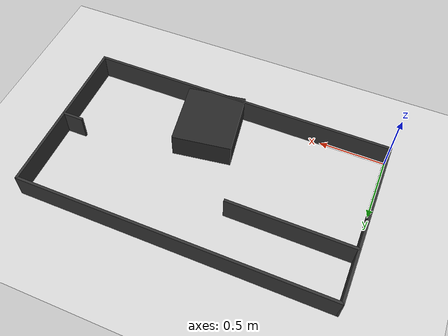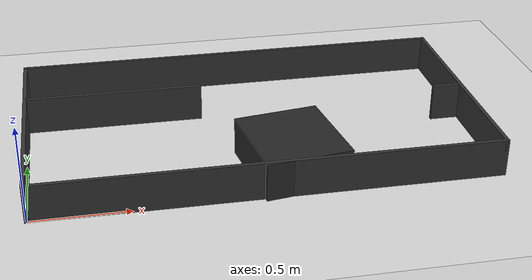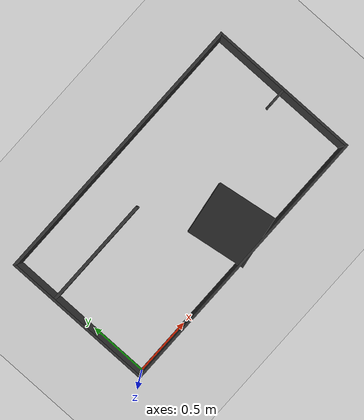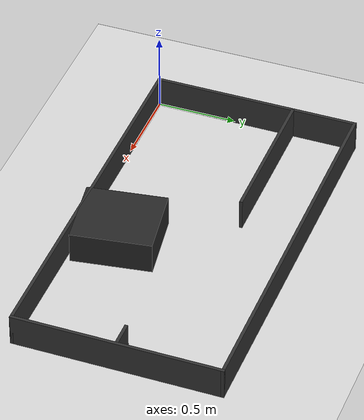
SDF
<?xml version="1.0" ?>
<sdf version="1.8">
  <world name="map5_arena">

    <physics name="1ms" type="ignored">
      <max_step_size>0.001</max_step_size>
      <real_time_factor>1.0</real_time_factor>
    </physics>

    <plugin filename="gz-sim-physics-system"
            name="gz::sim::systems::Physics"/>
    <plugin filename="gz-sim-user-commands-system"
            name="gz::sim::systems::UserCommands"/>
    <plugin filename="gz-sim-scene-broadcaster-system"
            name="gz::sim::systems::SceneBroadcaster"/>
    <plugin filename="gz-sim-sensors-system"
            name="gz::sim::systems::Sensors">
      <render_engine>ogre2</render_engine>
    </plugin>
    <plugin filename="gz-sim-imu-system"
            name="gz::sim::systems::Imu"/>

    <!-- 환경광 및 조명 -->
    <scene>
      <ambient>0.6 0.6 0.6 1.0</ambient>
      <background>0.8 0.85 0.9 1.0</background>
      <shadows>false</shadows>
    </scene>

    <light type="directional" name="sun">
      <cast_shadows>false</cast_shadows>
      <pose>1.18 0.64 5.0 0 0 0</pose>
      <diffuse>0.9 0.9 0.9 1</diffuse>
      <specular>0.2 0.2 0.2 1</specular>
      <direction>0 0 -1</direction>
    </light>

    <!-- 바닥면 (Ground Plane): 2.36m x 1.28m 아레나 바닥 -->
    <model name="ground_plane">
      <static>true</static>
      <pose>1.18 0.64 0 0 0 0</pose>
      <link name="link">
        <collision name="collision">
          <geometry><plane><normal>0 0 1</normal><size>2.36 1.28</size></plane></geometry>
          <surface>
            <friction>
              <ode><mu>1.0</mu><mu2>1.0</mu2></ode>
            </friction>
          </surface>
        </collision>
        <visual name="visual">
          <geometry><plane><normal>0 0 1</normal><size>2.36 1.28</size></plane></geometry>
          <material>
            <ambient>0.85 0.85 0.85 1</ambient>
            <diffuse>0.85 0.85 0.85 1</diffuse>
            <pbr>
              <metal>
                <albedo_map>map5_with_lanes_hi.png</albedo_map>
              </metal>
            </pbr>
          </material>
        </visual>
      </link>
    </model>

    <!--
      벽체 정의: 높이 20cm, 두께 2cm.
      pose의 z는 벽 중심이므로 0.1m.
    -->

    <!-- 1. 외곽 북쪽 벽 (y = 1.28m) -->
    <model name="wall_north">
      <static>true</static>
      <pose>1.18 1.28 0.1 0 0 0</pose>
      <link name="link">
        <collision name="collision">
          <geometry><box><size>2.38 0.02 0.2</size></box></geometry>
        </collision>
        <visual name="visual">
          <geometry><box><size>2.38 0.02 0.2</size></box></geometry>
          <material>
            <ambient>0.15 0.15 0.15 1</ambient>
            <diffuse>0.2 0.2 0.2 1</diffuse>
          </material>
        </visual>
      </link>
    </model>

    <!-- 2. 외곽 남쪽 벽 (y = 0.00m) -->
    <model name="wall_south">
      <static>true</static>
      <pose>1.18 0.00 0.1 0 0 0</pose>
      <link name="link">
        <collision name="collision">
          <geometry><box><size>2.38 0.02 0.2</size></box></geometry>
        </collision>
        <visual name="visual">
          <geometry><box><size>2.38 0.02 0.2</size></box></geometry>
          <material>
            <ambient>0.15 0.15 0.15 1</ambient>
            <diffuse>0.2 0.2 0.2 1</diffuse>
          </material>
        </visual>
      </link>
    </model>

    <!-- 3. 외곽 서쪽 벽 (x = 0.00m) -->
    <model name="wall_west">
      <static>true</static>
      <pose>0.00 0.64 0.1 0 0 0</pose>
      <link name="link">
        <collision name="collision">
          <geometry><box><size>0.02 1.30 0.2</size></box></geometry>
        </collision>
        <visual name="visual">
          <geometry><box><size>0.02 1.30 0.2</size></box></geometry>
          <material>
            <ambient>0.15 0.15 0.15 1</ambient>
            <diffuse>0.2 0.2 0.2 1</diffuse>
          </material>
        </visual>
      </link>
    </model>

    <!-- 4. 외곽 동쪽 벽 (x = 2.36m) -->
    <model name="wall_east">
      <static>true</static>
      <pose>2.36 0.64 0.1 0 0 0</pose>
      <link name="link">
        <collision name="collision">
          <geometry><box><size>0.02 1.30 0.2</size></box></geometry>
        </collision>
        <visual name="visual">
          <geometry><box><size>0.02 1.30 0.2</size></box></geometry>
          <material>
            <ambient>0.15 0.15 0.15 1</ambient>
            <diffuse>0.2 0.2 0.2 1</diffuse>
          </material>
        </visual>
      </link>
    </model>

    <!-- 5. 내부 좌측 수평 차단벽 (x in [0, 0.95], y = 0.88m) -->
    <model name="wall_inner_left">
      <static>true</static>
      <pose>0.475 0.88 0.1 0 0 0</pose>
      <link name="link">
        <collision name="collision">
          <geometry><box><size>0.95 0.02 0.2</size></box></geometry>
        </collision>
        <visual name="visual">
          <geometry><box><size>0.95 0.02 0.2</size></box></geometry>
          <material>
            <ambient>0.15 0.15 0.15 1</ambient>
            <diffuse>0.2 0.2 0.2 1</diffuse>
          </material>
        </visual>
      </link>
    </model>

    <!-- 6. 내부 우측 수평 돌출벽 (x in [2.20, 2.36], y = 0.64m) -->
    <model name="wall_inner_right">
      <static>true</static>
      <pose>2.28 0.64 0.1 0 0 0</pose>
      <link name="link">
        <collision name="collision">
          <geometry><box><size>0.16 0.02 0.2</size></box></geometry>
        </collision>
        <visual name="visual">
          <geometry><box><size>0.16 0.02 0.2</size></box></geometry>
          <material>
            <ambient>0.15 0.15 0.15 1</ambient>
            <diffuse>0.2 0.2 0.2 1</diffuse>
          </material>
        </visual>
      </link>
    </model>

    <!-- 7. 하단 중앙 사다리꼴 장애물 (x in [1.10, 1.55], y in [0.0, 0.55]) -->
    <model name="obstacle_center">
      <static>true</static>
      <pose>1.325 0.25 0.1 0 0 0.15</pose>
      <link name="link">
        <collision name="collision">
          <geometry><box><size>0.45 0.50 0.2</size></box></geometry>
        </collision>
        <visual name="visual">
          <geometry><box><size>0.45 0.50 0.2</size></box></geometry>
          <material>
            <ambient>0.1 0.1 0.1 1</ambient>
            <diffuse>0.15 0.15 0.15 1</diffuse>
          </material>
        </visual>
      </link>
    </model>

    <!--
      8. 천장 광역 카메라 센서 (Overhead Camera)
      위치: Z=2.3m 상공에서 아레나 중심(1.18, 0.64)을 수직 직하방으로 촬영
      토픽: /camera (640x480, 30fps)
    -->
    <model name="overhead_camera_mount">
      <static>true</static>
      <pose>1.18 0.64 2.3 0 1.5708 -1.5708</pose>
      <link name="link">
        <sensor name="overhead_cam" type="camera">
          <camera>
            <horizontal_fov>1.40</horizontal_fov>
            <image>
              <width>640</width>
              <height>480</height>
              <format>R8G8B8</format>
            </image>
            <clip>
              <near>0.1</near>
              <far>10.0</far>
            </clip>
          </camera>
          <always_on>1</always_on>
          <update_rate>30</update_rate>
          <visualize>true</visualize>
          <topic>/camera</topic>
        </sensor>
      </link>
    </model>

  </world>
</sdf>
